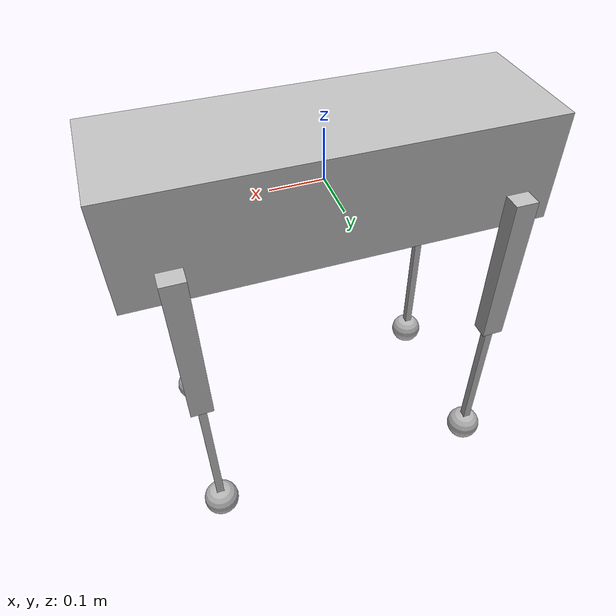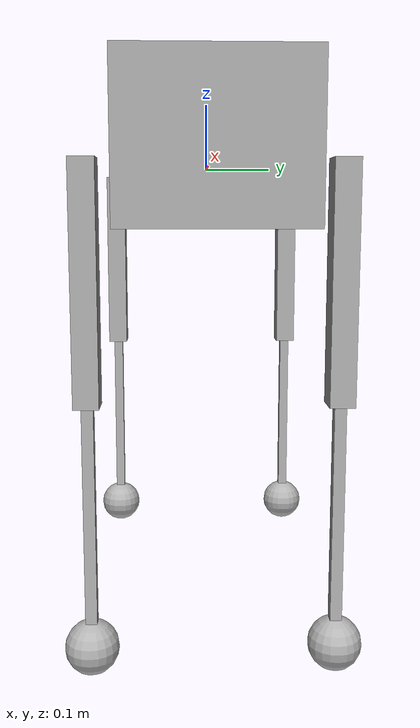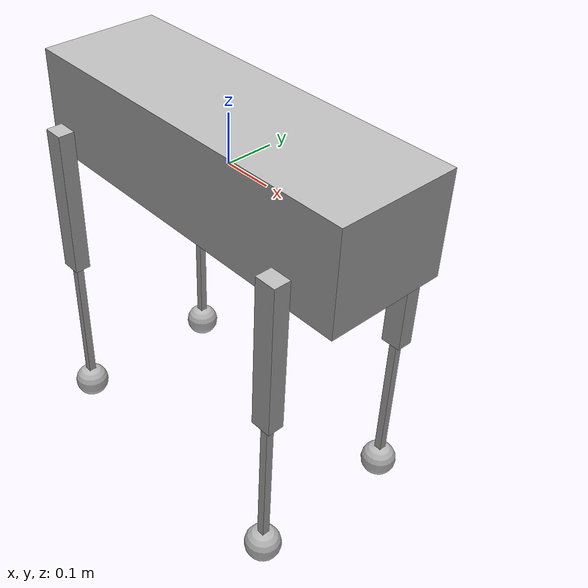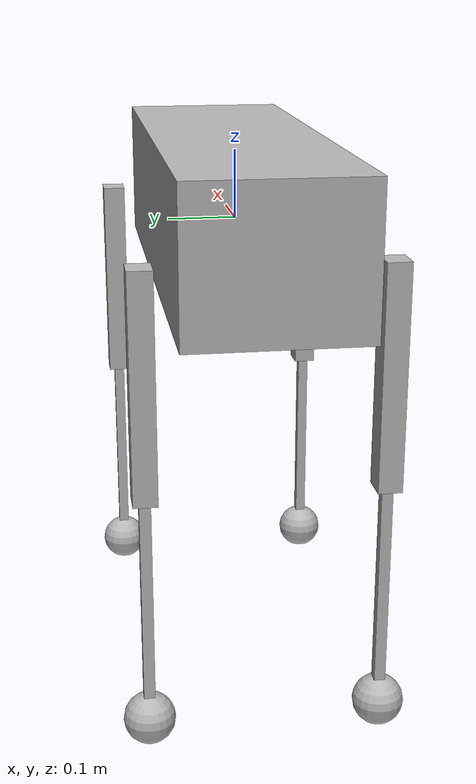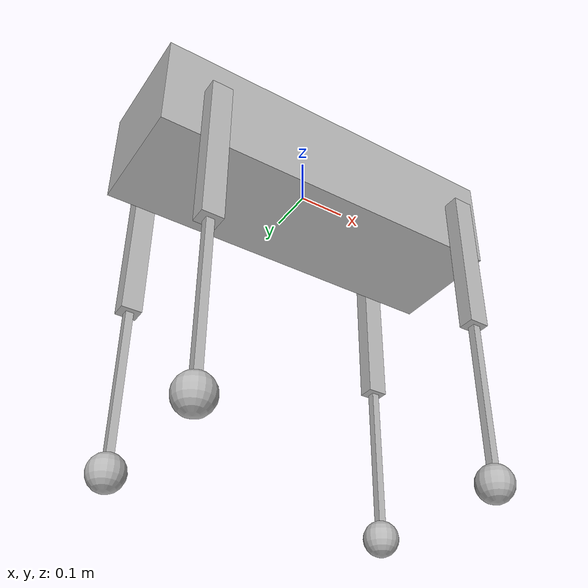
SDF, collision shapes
<sdf version='1.6'>
  <model name='spot'>
    <link name='body'>
      <pose frame=''>0 0 0 0 -0 0</pose>
      <inertial>
        <pose frame=''>0.002284 -4.1e-05 0.025163 0 -0 0</pose>
        <mass>13.734</mass>
        <inertia>
          <ixx>0.0734495</ixx>
          <ixy>0.00030338</ixy>
          <ixz>0.00191816</ixz>
          <iyy>0.250785</iyy>
          <iyz>-7.5401e-05</iyz>
          <izz>0.254569</izz>
        </inertia>
      </inertial>
      <collision name='body_fixed_joint_lump__trunk_collision'>
        <pose frame=''>0 0 0.01675 0 -0 0</pose>
        <geometry>
          <box>
            <size>0.78 0.25 0.21</size>
          </box>
        </geometry>
        <surface>
          <contact>
            <ode>
              <kp>1e+06</kp>
              <kd>1</kd>
            </ode>
          </contact>
          <friction>
            <ode>
              <mu>0.85</mu>
              <mu2>0.85</mu2>
            </ode>
          </friction>
        </surface>
      </collision>
      <collision name='body_fixed_joint_lump__imu_link_collision_1'>
        <pose frame=''>0 0 0 0 -0 0</pose>
        <geometry>
          <box>
            <size>0.001 0.001 0.001</size>
          </box>
        </geometry>
        <surface>
          <contact>
            <ode/>
          </contact>
          <friction>
            <ode/>
          </friction>
        </surface>
      </collision>
      <visual name='body_visual'>
        <pose frame=''>0 0 0 0 -0 0</pose>
        <geometry>
          <box>
            <size>0.001 0.001 0.001</size>
          </box>
        </geometry>
        <material>
          <script>
            <uri>__default__</uri>
            <name>__default__</name>
          </script>
        </material>
      </visual>
      <visual name='body_fixed_joint_lump__trunk_visual_1'>
        <pose frame=''>0 0 0 0 -0 0</pose>
        <geometry>
          <mesh>
            <scale>1 1 1</scale>
            <uri>model:///meshes/body.dae</uri>
          </mesh>
        </geometry>
        <material>
          <script>
            <uri>__default__</uri>
            <name>__default__</name>
          </script>
        </material>
      </visual>
      <visual name='body_fixed_joint_lump__imu_link_visual_2'>
        <pose frame=''>0 0 0 0 -0 0</pose>
        <geometry>
          <box>
            <size>0.001 0.001 0.001</size>
          </box>
        </geometry>
        <material>
          <script>
            <uri>__default__</uri>
            <name>__default__</name>
          </script>
        </material>
      </visual>
      <velocity_decay/>
      <velocity_decay/>
      <velocity_decay/>
      <sensor name='realsense_R200' type='depth'>
        <update_rate>5</update_rate>
        <always_on>1</always_on>
        <visualize>0</visualize>
        <camera name='__default__'>
          <horizontal_fov>1</horizontal_fov>
          <image>
            <width>640</width>
            <height>480</height>
            <format>R8G8B8</format>
          </image>
          <depth_camera>
            <output>depths</output>
          </depth_camera>
          <clip>
            <near>0.005</near>
            <far>6</far>
          </clip>
        </camera>
        <plugin name='camera_controller' filename='libgazebo_ros_openni_kinect.so'>
          <baseline>0.2</baseline>
          <alwaysOn>1</alwaysOn>
          <updateRate>0.0</updateRate>
          <cameraName>camera</cameraName>
          <frameName>camera_optical</frameName>
          <imageTopicName>rgb/image_raw</imageTopicName>
          <depthImageTopicName>depth/image_raw</depthImageTopicName>
          <pointCloudTopicName>depth/points</pointCloudTopicName>
          <cameraInfoTopicName>rgb/camera_info</cameraInfoTopicName>
          <depthImageCameraInfoTopicName>depth/camera_info</depthImageCameraInfoTopicName>
          <pointCloudCutoff>0.4</pointCloudCutoff>
          <hackBaseline>0.07</hackBaseline>
          <distortionK1>0.0</distortionK1>
          <distortionK2>0.0</distortionK2>
          <distortionK3>0.0</distortionK3>
          <distortionT1>0.0</distortionT1>
          <distortionT2>0.0</distortionT2>
          <CxPrime>0.0</CxPrime>
          <Cx>0.0</Cx>
          <Cy>0.0</Cy>
          <focalLength>0</focalLength>
          <hackBaseline>0</hackBaseline>
        </plugin>
        <pose frame=''>0.42 0 0 0 -0 0</pose>
      </sensor>
      <gravity>1</gravity>
      <velocity_decay/>
      <gravity>1</gravity>
      <sensor name='imu_sensor' type='imu'>
        <always_on>1</always_on>
        <update_rate>500</update_rate>
        <visualize>1</visualize>
        <topic>__default_topic__</topic>
        <plugin name='imu_plugin' filename='libgazebo_ros_imu_sensor.so'>
          <topicName>trunk_imu</topicName>
          <bodyName>imu_link</bodyName>
          <updateRateHZ>500.0</updateRateHZ>
          <gaussianNoise>0.0</gaussianNoise>
          <xyzOffset>0 0 0</xyzOffset>
          <rpyOffset>0 0 0</rpyOffset>
          <frameName>imu_link</frameName>
        </plugin>
        <pose frame=''>0 0 0 0 -0 0</pose>
      </sensor>
    </link>
    <link name='hip2'>
      <pose frame=''>0.29785 -0.055 0 0 -0 0</pose>
      <inertial>
        <pose frame=''>-0.001568 0.008134 0.000864 0 -0 0</pose>
        <mass>1.096</mass>
        <inertia>
          <ixx>0.000822113</ixx>
          <ixy>4.982e-06</ixy>
          <ixz>-3.672e-05</ixz>
          <iyy>0.000983196</iyy>
          <iyz>-2.811e-06</iyz>
          <izz>0.000864753</izz>
        </inertia>
      </inertial>
      <collision name='hip2_collision'>
        <pose frame=''>0 0.021 0 1.5708 -0 0</pose>
        <geometry>
          <cylinder>
            <length>0.08</length>
            <radius>0.041</radius>
          </cylinder>
        </geometry>
        <surface>
          <contact>
            <ode/>
          </contact>
          <friction>
            <ode>
              <mu>0.85</mu>
              <mu2>0.85</mu2>
            </ode>
          </friction>
        </surface>
      </collision>
      <visual name='hip2_visual'>
        <pose frame=''>0 0 0 0 -0 0</pose>
        <geometry>
          <mesh>
            <scale>1 1 1</scale>
            <uri>model:///meshes/front_right_hip.dae</uri>
          </mesh>
        </geometry>
        <material>
          <script>
            <uri>__default__</uri>
            <name>__default__</name>
          </script>
        </material>
      </visual>
      <gravity>1</gravity>
      <velocity_decay/>
    </link>
    <joint name='10' type='revolute'>
      <child>hip2</child>
      <parent>body</parent>
      <axis>
        <xyz>1 0 0</xyz>
        <limit>
          <lower>-3.14</lower>
          <upper>3.14</upper>
          <effort>20</effort>
          <velocity>52.4</velocity>
        </limit>
        <dynamics>
          <damping>0</damping>
          <friction>0</friction>
          <spring_reference>0</spring_reference>
          <spring_stiffness>0</spring_stiffness>
        </dynamics>
        <use_parent_model_frame>0</use_parent_model_frame>
      </axis>
    </joint>
    <link name='upper2'>
      <pose frame=''>0.29785 -0.16595 0 0 -0 0</pose>
      <inertial>
        <pose frame=''>-0.000482 -0.02001 -0.031996 0 -0 0</pose>
        <mass>0.228</mass>
        <inertia>
          <ixx>0.0099611</ixx>
          <ixy>-1.0388e-05</ixy>
          <ixz>0.000250428</ixz>
          <iyy>0.00928008</iyy>
          <iyz>8.511e-05</iyz>
          <izz>0.00178256</izz>
        </inertia>
      </inertial>
      <collision name='upper2_collision'>
        <pose frame=''>0 0 -0.16 3.14159 1.57079 3.14159</pose>
        <geometry>
          <box>
            <size>0.32 0.034 0.043</size>
          </box>
        </geometry>
        <surface>
          <contact>
            <ode>
              <kp>1e+06</kp>
              <kd>1</kd>
            </ode>
          </contact>
          <friction>
            <ode>
              <mu>0.85</mu>
              <mu2>0.85</mu2>
            </ode>
          </friction>
        </surface>
      </collision>
      <visual name='upper2_visual'>
        <pose frame=''>0 0 0 0 0.075 0</pose>
        <geometry>
          <mesh>
            <scale>1 1 1</scale>
            <uri>model:///meshes/front_right_upper_leg.dae</uri>
          </mesh>
        </geometry>
        <material>
          <script>
            <uri>__default__</uri>
            <name>__default__</name>
          </script>
        </material>
      </visual>
      <gravity>1</gravity>
      <velocity_decay/>
      <self_collide>0</self_collide>
    </link>
    <joint name='4' type='revolute'>
      <child>upper2</child>
      <parent>hip2</parent>
      <axis>
        <xyz>0 -1 0</xyz>
        <limit>
          <lower>-3.14</lower>
          <upper>3.14</upper>
          <effort>55</effort>
          <velocity>28.6</velocity>
        </limit>
        <dynamics>
          <damping>0</damping>
          <friction>0</friction>
          <spring_reference>0</spring_reference>
          <spring_stiffness>0</spring_stiffness>
        </dynamics>
        <use_parent_model_frame>0</use_parent_model_frame>
      </axis>
    </joint>
    <link name='lower2'>
      <pose frame=''>0.29785 -0.16595 -0.32147 0 -0 0</pose>
      <inertial>
        <pose frame=''>-0.002196 -0.000381 -0.12338 0 -0 0</pose>
        <mass>0.041</mass>
        <inertia>
          <ixx>0.00618196</ixx>
          <ixy>2.37e-07</ixy>
          <ixz>-2.985e-06</ixz>
          <iyy>0.00619655</iyy>
          <iyz>5.138e-06</iyz>
          <izz>3.4774e-05</izz>
        </inertia>
      </inertial>
      <collision name='lower2_collision'>
        <pose frame=''>0 0 -0.165 3.14159 1.57079 3.14159</pose>
        <geometry>
          <box>
            <size>0.33 0.016 0.016</size>
          </box>
        </geometry>
        <surface>
          <contact>
            <ode/>
          </contact>
          <friction>
            <ode>
              <mu>0.85</mu>
              <mu2>0.85</mu2>
            </ode>
          </friction>
        </surface>
      </collision>
      <visual name='lower2_visual'>
        <pose frame=''>0 0 0 0 -0 0</pose>
        <geometry>
          <mesh>
            <scale>1 1 1</scale>
            <uri>model:///meshes/front_right_lower_leg.dae</uri>
          </mesh>
        </geometry>
        <material>
          <script>
            <uri>__default__</uri>
            <name>__default__</name>
          </script>
        </material>
      </visual>
      <gravity>1</gravity>
      <velocity_decay/>
      <self_collide>0</self_collide>
    </link>
    <joint name='5' type='revolute'>
      <child>lower2</child>
      <parent>upper2</parent>
      <axis>
        <xyz>0 1 0</xyz>
        <limit>
          <lower>-3.14</lower>
          <upper>3.14</upper>
          <effort>55</effort>
          <velocity>28.6</velocity>
        </limit>
        <dynamics>
          <damping>0</damping>
          <friction>0</friction>
          <spring_reference>0</spring_reference>
          <spring_stiffness>0</spring_stiffness>
        </dynamics>
        <use_parent_model_frame>0</use_parent_model_frame>
      </axis>
    </joint>
    <link name='toe2'>
      <pose frame=''>0.29785 -0.16595 -0.65447 0 -0 0</pose>
      <inertial>
        <pose frame=''>0 0 0 0 -0 0</pose>
        <mass>0.01</mass>
        <inertia>
          <ixx>1.6854e-05</ixx>
          <ixy>0</ixy>
          <ixz>0</ixz>
          <iyy>1.6854e-05</iyy>
          <iyz>0</iyz>
          <izz>1.6854e-05</izz>
        </inertia>
      </inertial>
      <collision name='toe2_collision_collision'>
        <pose frame=''>0 0 0 0 -0 0</pose>
        <geometry>
          <sphere>
            <radius>0.037</radius>
          </sphere>
        </geometry>
        <surface>
          <contact>
            <ode>
              <kp>1e+06</kp>
              <kd>1</kd>
            </ode>
          </contact>
          <friction>
            <ode>
              <mu>0.85</mu>
              <mu2>0.85</mu2>
            </ode>
          </friction>
        </surface>
      </collision>
      <velocity_decay/>
      <sensor name='toe2_contact' type='contact'>
        <plugin name='toe2_plugin' filename='libgazebo_ros_bumper.so'>
          <alwaysOn>1</alwaysOn>
          <updateRate>500</updateRate>
          <bumperTopicName>gazebo/toe2_contact_state</bumperTopicName>
          <frameName>world</frameName>
        </plugin>
        <contact>
          <collision>toe2_collision</collision>
          <topic>__default_topic__</topic>
        </contact>
        <update_rate>500</update_rate>
      </sensor>
      <gravity>1</gravity>
      <velocity_decay/>
      <self_collide>0</self_collide>
    </link>
    <joint name='jtoe2' type='fixed'>
      <child>toe2</child>
      <parent>lower2</parent>
      <axis>
        <dynamics>
          <spring_reference>0</spring_reference>
          <spring_stiffness>0</spring_stiffness>
        </dynamics>
        <xyz>0 0 1</xyz>
        <use_parent_model_frame>0</use_parent_model_frame>
        <limit>
          <lower>-1e+16</lower>
          <upper>1e+16</upper>
        </limit>
      </axis>
      <physics>
        <ode>
          <limit>
            <cfm>0</cfm>
            <erp>0.2</erp>
          </limit>
        </ode>
      </physics>
    </joint>
    <link name='hip3'>
      <pose frame=''>-0.29785 -0.055 0 0 -0 0</pose>
      <inertial>
        <pose frame=''>0.001568 0.008134 0.000864 0 -0 0</pose>
        <mass>1.096</mass>
        <inertia>
          <ixx>0.000822113</ixx>
          <ixy>-4.982e-06</ixy>
          <ixz>3.672e-05</ixz>
          <iyy>0.000983196</iyy>
          <iyz>-2.811e-06</iyz>
          <izz>0.000864753</izz>
        </inertia>
      </inertial>
      <collision name='hip3_collision'>
        <pose frame=''>0 0.021 0 1.5708 -0 0</pose>
        <geometry>
          <cylinder>
            <length>0.08</length>
            <radius>0.041</radius>
          </cylinder>
        </geometry>
        <surface>
          <contact>
            <ode/>
          </contact>
          <friction>
            <ode>
              <mu>0.85</mu>
              <mu2>0.85</mu2>
            </ode>
          </friction>
        </surface>
      </collision>
      <visual name='hip3_visual'>
        <pose frame=''>0 0 0 0 -0 0</pose>
        <geometry>
          <mesh>
            <scale>1 1 1</scale>
            <uri>model:///meshes/rear_right_hip.dae</uri>
          </mesh>
        </geometry>
        <material>
          <script>
            <uri>__default__</uri>
            <name>__default__</name>
          </script>
        </material>
      </visual>
      <gravity>1</gravity>
      <velocity_decay/>
    </link>
    <joint name='11' type='revolute'>
      <child>hip3</child>
      <parent>body</parent>
      <axis>
        <xyz>1 0 0</xyz>
        <limit>
          <lower>-3.14</lower>
          <upper>3.14</upper>
          <effort>20</effort>
          <velocity>52.4</velocity>
        </limit>
        <dynamics>
          <damping>0</damping>
          <friction>0</friction>
          <spring_reference>0</spring_reference>
          <spring_stiffness>0</spring_stiffness>
        </dynamics>
        <use_parent_model_frame>0</use_parent_model_frame>
      </axis>
    </joint>
    <link name='upper3'>
      <pose frame=''>-0.29785 -0.16595 0 0 -0 0</pose>
      <inertial>
        <pose frame=''>-0.000482 -0.02001 -0.031996 0 -0 0</pose>
        <mass>0.228</mass>
        <inertia>
          <ixx>0.00991611</ixx>
          <ixy>-1.0388e-05</ixy>
          <ixz>0.000250428</ixz>
          <iyy>0.00928008</iyy>
          <iyz>8.511e-05</iyz>
          <izz>0.00178256</izz>
        </inertia>
      </inertial>
      <collision name='upper3_collision'>
        <pose frame=''>0 0 -0.16 3.14159 1.57079 3.14159</pose>
        <geometry>
          <box>
            <size>0.32 0.034 0.043</size>
          </box>
        </geometry>
        <surface>
          <contact>
            <ode>
              <kp>1e+06</kp>
              <kd>1</kd>
            </ode>
          </contact>
          <friction>
            <ode>
              <mu>0.85</mu>
              <mu2>0.85</mu2>
            </ode>
          </friction>
        </surface>
      </collision>
      <visual name='upper3_visual'>
        <pose frame=''>0 0 0 0 0.075 0</pose>
        <geometry>
          <mesh>
            <scale>1 1 1</scale>
            <uri>model:///meshes/rear_right_upper_leg.dae</uri>
          </mesh>
        </geometry>
        <material>
          <script>
            <uri>__default__</uri>
            <name>__default__</name>
          </script>
        </material>
      </visual>
      <gravity>1</gravity>
      <velocity_decay/>
      <self_collide>0</self_collide>
    </link>
    <joint name='6' type='revolute'>
      <child>upper3</child>
      <parent>hip3</parent>
      <axis>
        <xyz>0 -1 0</xyz>
        <limit>
          <lower>-3.14</lower>
          <upper>3.14</upper>
          <effort>55</effort>
          <velocity>28.6</velocity>
        </limit>
        <dynamics>
          <damping>0</damping>
          <friction>0</friction>
          <spring_reference>0</spring_reference>
          <spring_stiffness>0</spring_stiffness>
        </dynamics>
        <use_parent_model_frame>0</use_parent_model_frame>
      </axis>
    </joint>
    <link name='lower3'>
      <pose frame=''>-0.29785 -0.16595 -0.32147 0 -0 0</pose>
      <inertial>
        <pose frame=''>-0.002196 -0.000381 -0.12338 0 -0 0</pose>
        <mass>0.041</mass>
        <inertia>
          <ixx>0.00618196</ixx>
          <ixy>2.37e-07</ixy>
          <ixz>-2.985e-06</ixz>
          <iyy>0.00619655</iyy>
          <iyz>5.138e-06</iyz>
          <izz>3.4774e-05</izz>
        </inertia>
      </inertial>
      <collision name='lower3_collision'>
        <pose frame=''>0 0 -0.165 3.14159 1.57079 3.14159</pose>
        <geometry>
          <box>
            <size>0.33 0.016 0.016</size>
          </box>
        </geometry>
        <surface>
          <contact>
            <ode/>
          </contact>
          <friction>
            <ode>
              <mu>0.85</mu>
              <mu2>0.85</mu2>
            </ode>
          </friction>
        </surface>
      </collision>
      <visual name='lower3_visual'>
        <pose frame=''>0 0 0 0 -0 0</pose>
        <geometry>
          <mesh>
            <scale>1 1 1</scale>
            <uri>model:///meshes/rear_right_lower_leg.dae</uri>
          </mesh>
        </geometry>
        <material>
          <script>
            <uri>__default__</uri>
            <name>__default__</name>
          </script>
        </material>
      </visual>
      <gravity>1</gravity>
      <velocity_decay/>
      <self_collide>0</self_collide>
    </link>
    <joint name='7' type='revolute'>
      <child>lower3</child>
      <parent>upper3</parent>
      <axis>
        <xyz>0 1 0</xyz>
        <limit>
          <lower>-3.14</lower>
          <upper>3.14</upper>
          <effort>55</effort>
          <velocity>28.6</velocity>
        </limit>
        <dynamics>
          <damping>0</damping>
          <friction>0</friction>
          <spring_reference>0</spring_reference>
          <spring_stiffness>0</spring_stiffness>
        </dynamics>
        <use_parent_model_frame>0</use_parent_model_frame>
      </axis>
    </joint>
    <link name='toe3'>
      <pose frame=''>-0.29785 -0.16595 -0.65447 0 -0 0</pose>
      <inertial>
        <pose frame=''>0 0 0 0 -0 0</pose>
        <mass>0.01</mass>
        <inertia>
          <ixx>1.6854e-05</ixx>
          <ixy>0</ixy>
          <ixz>0</ixz>
          <iyy>1.6854e-05</iyy>
          <iyz>0</iyz>
          <izz>1.6854e-05</izz>
        </inertia>
      </inertial>
      <collision name='toe3_collision_collision'>
        <pose frame=''>0 0 0 0 -0 0</pose>
        <geometry>
          <sphere>
            <radius>0.037</radius>
          </sphere>
        </geometry>
        <surface>
          <contact>
            <ode>
              <kp>1e+06</kp>
              <kd>1</kd>
            </ode>
          </contact>
          <friction>
            <ode>
              <mu>0.85</mu>
              <mu2>0.85</mu2>
            </ode>
          </friction>
        </surface>
      </collision>
      <velocity_decay/>
      <sensor name='toe3_contact' type='contact'>
        <plugin name='toe3_plugin' filename='libgazebo_ros_bumper.so'>
          <alwaysOn>1</alwaysOn>
          <updateRate>500</updateRate>
          <bumperTopicName>gazebo/toe3_contact_state</bumperTopicName>
          <frameName>world</frameName>
        </plugin>
        <contact>
          <collision>toe3_collision</collision>
          <topic>__default_topic__</topic>
        </contact>
        <update_rate>500</update_rate>
      </sensor>
      <gravity>1</gravity>
      <velocity_decay/>
      <self_collide>0</self_collide>
    </link>
    <joint name='jtoe3' type='fixed'>
      <child>toe3</child>
      <parent>lower3</parent>
      <axis>
        <dynamics>
          <spring_reference>0</spring_reference>
          <spring_stiffness>0</spring_stiffness>
        </dynamics>
        <xyz>0 0 1</xyz>
        <use_parent_model_frame>0</use_parent_model_frame>
        <limit>
          <lower>-1e+16</lower>
          <upper>1e+16</upper>
        </limit>
      </axis>
      <physics>
        <ode>
          <limit>
            <cfm>0</cfm>
            <erp>0.2</erp>
          </limit>
        </ode>
      </physics>
    </joint>
    <link name='hip0'>
      <pose frame=''>0.29785 0.055 0 0 -0 0</pose>
      <inertial>
        <pose frame=''>-0.001568 -0.008134 0.000864 0 -0 0</pose>
        <mass>1.096</mass>
        <inertia>
          <ixx>0.000822113</ixx>
          <ixy>-4.982e-06</ixy>
          <ixz>-3.672e-05</ixz>
          <iyy>0.000983196</iyy>
          <iyz>2.811e-06</iyz>
          <izz>0.000864753</izz>
        </inertia>
      </inertial>
      <collision name='hip0_collision'>
        <pose frame=''>0 -0.021 0 1.5708 -0 0</pose>
        <geometry>
          <cylinder>
            <length>0.08</length>
            <radius>0.041</radius>
          </cylinder>
        </geometry>
        <surface>
          <contact>
            <ode/>
          </contact>
          <friction>
            <ode>
              <mu>0.85</mu>
              <mu2>0.85</mu2>
            </ode>
          </friction>
        </surface>
      </collision>
      <visual name='hip0_visual'>
        <pose frame=''>0 0 0 0 -0 0</pose>
        <geometry>
          <mesh>
            <scale>1 1 1</scale>
            <uri>model:///meshes/front_left_hip.dae</uri>
          </mesh>
        </geometry>
        <material>
          <script>
            <uri>__default__</uri>
            <name>__default__</name>
          </script>
        </material>
      </visual>
      <gravity>1</gravity>
      <velocity_decay/>
    </link>
    <joint name='8' type='revolute'>
      <child>hip0</child>
      <parent>body</parent>
      <axis>
        <xyz>1 0 0</xyz>
        <limit>
          <lower>-3.14</lower>
          <upper>3.14</upper>
          <effort>20</effort>
          <velocity>52.4</velocity>
        </limit>
        <dynamics>
          <damping>0</damping>
          <friction>0</friction>
          <spring_reference>0</spring_reference>
          <spring_stiffness>0</spring_stiffness>
        </dynamics>
        <use_parent_model_frame>0</use_parent_model_frame>
      </axis>
    </joint>
    <link name='upper0'>
      <pose frame=''>0.29785 0.16595 0 0 -0 0</pose>
      <inertial>
        <pose frame=''>-0.000482 0.02001 -0.031996 0 -0 0</pose>
        <mass>0.228</mass>
        <inertia>
          <ixx>0.00991611</ixx>
          <ixy>1.0388e-05</ixy>
          <ixz>0.000250428</ixz>
          <iyy>0.00928008</iyy>
          <iyz>-8.511e-05</iyz>
          <izz>0.00178256</izz>
        </inertia>
      </inertial>
      <collision name='upper0_collision'>
        <pose frame=''>0 0 -0.16 3.14159 -1.57079 3.14159</pose>
        <geometry>
          <box>
            <size>0.32 0.034 0.043</size>
          </box>
        </geometry>
        <surface>
          <contact>
            <ode>
              <kp>1e+06</kp>
              <kd>1</kd>
            </ode>
          </contact>
          <friction>
            <ode>
              <mu>0.85</mu>
              <mu2>0.85</mu2>
            </ode>
          </friction>
        </surface>
      </collision>
      <visual name='upper0_visual'>
        <pose frame=''>0 0 0 0 0.075 0</pose>
        <geometry>
          <mesh>
            <scale>1 1 1</scale>
            <uri>model:///meshes/front_left_upper_leg.dae</uri>
          </mesh>
        </geometry>
        <material>
          <script>
            <uri>__default__</uri>
            <name>__default__</name>
          </script>
        </material>
      </visual>
      <gravity>1</gravity>
      <velocity_decay/>
      <self_collide>0</self_collide>
    </link>
    <joint name='0' type='revolute'>
      <child>upper0</child>
      <parent>hip0</parent>
      <axis>
        <xyz>0 -1 0</xyz>
        <limit>
          <lower>-3.14</lower>
          <upper>3.14</upper>
          <effort>55</effort>
          <velocity>28.6</velocity>
        </limit>
        <dynamics>
          <damping>0</damping>
          <friction>0</friction>
          <spring_reference>0</spring_reference>
          <spring_stiffness>0</spring_stiffness>
        </dynamics>
        <use_parent_model_frame>0</use_parent_model_frame>
      </axis>
    </joint>
    <link name='lower0'>
      <pose frame=''>0.29785 0.16595 -0.32147 0 -0 0</pose>
      <inertial>
        <pose frame=''>-0.002196 -0.000381 -0.12338 0 -0 0</pose>
        <mass>0.041</mass>
        <inertia>
          <ixx>0.00618196</ixx>
          <ixy>2.37e-07</ixy>
          <ixz>-2.985e-06</ixz>
          <iyy>0.00619655</iyy>
          <iyz>5.138e-06</iyz>
          <izz>3.4774e-05</izz>
        </inertia>
      </inertial>
      <collision name='lower0_collision'>
        <pose frame=''>0 0 -0.165 3.14159 1.57079 3.14159</pose>
        <geometry>
          <box>
            <size>0.33 0.016 0.016</size>
          </box>
        </geometry>
        <surface>
          <contact>
            <ode/>
          </contact>
          <friction>
            <ode>
              <mu>0.85</mu>
              <mu2>0.85</mu2>
            </ode>
          </friction>
        </surface>
      </collision>
      <visual name='lower0_visual'>
        <pose frame=''>0 0 0 0 -0 0</pose>
        <geometry>
          <mesh>
            <scale>1 1 1</scale>
            <uri>model:///meshes/front_left_lower_leg.dae</uri>
          </mesh>
        </geometry>
        <material>
          <script>
            <uri>__default__</uri>
            <name>__default__</name>
          </script>
        </material>
      </visual>
      <gravity>1</gravity>
      <velocity_decay/>
      <self_collide>0</self_collide>
    </link>
    <joint name='1' type='revolute'>
      <child>lower0</child>
      <parent>upper0</parent>
      <axis>
        <xyz>0 1 0</xyz>
        <limit>
          <lower>-3.14</lower>
          <upper>3.14</upper>
          <effort>55</effort>
          <velocity>28.6</velocity>
        </limit>
        <dynamics>
          <damping>0</damping>
          <friction>0</friction>
          <spring_reference>0</spring_reference>
          <spring_stiffness>0</spring_stiffness>
        </dynamics>
        <use_parent_model_frame>0</use_parent_model_frame>
      </axis>
    </joint>
    <link name='toe0'>
      <pose frame=''>0.29785 0.16595 -0.65447 0 -0 0</pose>
      <inertial>
        <pose frame=''>0 0 0 0 -0 0</pose>
        <mass>0.01</mass>
        <inertia>
          <ixx>1.6854e-05</ixx>
          <ixy>0</ixy>
          <ixz>0</ixz>
          <iyy>1.6854e-05</iyy>
          <iyz>0</iyz>
          <izz>1.6854e-05</izz>
        </inertia>
      </inertial>
      <collision name='toe0_collision_collision'>
        <pose frame=''>0 0 0 0 -0 0</pose>
        <geometry>
          <sphere>
            <radius>0.037</radius>
          </sphere>
        </geometry>
        <surface>
          <contact>
            <ode>
              <kp>1e+06</kp>
              <kd>1</kd>
            </ode>
          </contact>
          <friction>
            <ode>
              <mu>0.85</mu>
              <mu2>0.85</mu2>
            </ode>
          </friction>
        </surface>
      </collision>
      <velocity_decay/>
      <sensor name='toe0_contact' type='contact'>
        <plugin name='toe0_plugin' filename='libgazebo_ros_bumper.so'>
          <alwaysOn>1</alwaysOn>
          <updateRate>500</updateRate>
          <bumperTopicName>gazebo/toe0_contact_state</bumperTopicName>
          <frameName>world</frameName>
        </plugin>
        <contact>
          <collision>toe0_collision</collision>
          <topic>__default_topic__</topic>
        </contact>
        <update_rate>500</update_rate>
      </sensor>
      <gravity>1</gravity>
      <velocity_decay/>
      <self_collide>0</self_collide>
    </link>
    <joint name='jtoe0' type='fixed'>
      <child>toe0</child>
      <parent>lower0</parent>
      <axis>
        <dynamics>
          <spring_reference>0</spring_reference>
          <spring_stiffness>0</spring_stiffness>
        </dynamics>
        <xyz>0 0 1</xyz>
        <use_parent_model_frame>0</use_parent_model_frame>
        <limit>
          <lower>-1e+16</lower>
          <upper>1e+16</upper>
        </limit>
      </axis>
      <physics>
        <ode>
          <limit>
            <cfm>0</cfm>
            <erp>0.2</erp>
          </limit>
        </ode>
      </physics>
    </joint>
    <link name='hip1'>
      <pose frame=''>-0.29785 0.055 0 0 -0 0</pose>
      <inertial>
        <pose frame=''>0.001568 -0.008134 0.000864 0 -0 0</pose>
        <mass>1.096</mass>
        <inertia>
          <ixx>0.000822113</ixx>
          <ixy>4.982e-06</ixy>
          <ixz>3.672e-05</ixz>
          <iyy>0.000983196</iyy>
          <iyz>2.811e-06</iyz>
          <izz>0.000864753</izz>
        </inertia>
      </inertial>
      <collision name='hip1_collision'>
        <pose frame=''>0 -0.021 0 1.5708 -0 0</pose>
        <geometry>
          <cylinder>
            <length>0.08</length>
            <radius>0.041</radius>
          </cylinder>
        </geometry>
        <surface>
          <contact>
            <ode/>
          </contact>
          <friction>
            <ode>
              <mu>0.85</mu>
              <mu2>0.85</mu2>
            </ode>
          </friction>
        </surface>
      </collision>
      <visual name='hip1_visual'>
        <pose frame=''>0 0 0 0 -0 0</pose>
        <geometry>
          <mesh>
            <scale>1 1 1</scale>
            <uri>model:///meshes/rear_left_hip.dae</uri>
          </mesh>
        </geometry>
        <material>
          <script>
            <uri>__default__</uri>
            <name>__default__</name>
          </script>
        </material>
      </visual>
      <gravity>1</gravity>
      <velocity_decay/>
    </link>
    <joint name='9' type='revolute'>
      <child>hip1</child>
      <parent>body</parent>
      <axis>
        <xyz>1 0 0</xyz>
        <limit>
          <lower>-3.14</lower>
          <upper>3.14</upper>
          <effort>20</effort>
          <velocity>52.4</velocity>
        </limit>
        <dynamics>
          <damping>0</damping>
          <friction>0</friction>
          <spring_reference>0</spring_reference>
          <spring_stiffness>0</spring_stiffness>
        </dynamics>
        <use_parent_model_frame>0</use_parent_model_frame>
      </axis>
    </joint>
    <link name='upper1'>
      <pose frame=''>-0.29785 0.16595 0 0 -0 0</pose>
      <inertial>
        <pose frame=''>-0.000482 0.02001 -0.031996 0 -0 0</pose>
        <mass>0.228</mass>
        <inertia>
          <ixx>0.00991611</ixx>
          <ixy>1.0388e-05</ixy>
          <ixz>0.000250428</ixz>
          <iyy>0.00928008</iyy>
          <iyz>-8.511e-05</iyz>
          <izz>0.00178256</izz>
        </inertia>
      </inertial>
      <collision name='upper1_collision'>
        <pose frame=''>0 0 -0.16 3.14159 1.57079 3.14159</pose>
        <geometry>
          <box>
            <size>0.32 0.034 0.043</size>
          </box>
        </geometry>
        <surface>
          <contact>
            <ode>
              <kp>1e+06</kp>
              <kd>1</kd>
            </ode>
          </contact>
          <friction>
            <ode>
              <mu>0.85</mu>
              <mu2>0.85</mu2>
            </ode>
          </friction>
        </surface>
      </collision>
      <visual name='upper1_visual'>
        <pose frame=''>0 0 0 0 0.075 0</pose>
        <geometry>
          <mesh>
            <scale>1 1 1</scale>
            <uri>model:///meshes/rear_left_upper_leg.dae</uri>
          </mesh>
        </geometry>
        <material>
          <script>
            <uri>__default__</uri>
            <name>__default__</name>
          </script>
        </material>
      </visual>
      <gravity>1</gravity>
      <velocity_decay/>
      <self_collide>0</self_collide>
    </link>
    <joint name='2' type='revolute'>
      <child>upper1</child>
      <parent>hip1</parent>
      <axis>
        <xyz>0 -1 0</xyz>
        <limit>
          <lower>-3.14</lower>
          <upper>3.14</upper>
          <effort>55</effort>
          <velocity>28.6</velocity>
        </limit>
        <dynamics>
          <damping>0</damping>
          <friction>0</friction>
          <spring_reference>0</spring_reference>
          <spring_stiffness>0</spring_stiffness>
        </dynamics>
        <use_parent_model_frame>0</use_parent_model_frame>
      </axis>
    </joint>
    <link name='lower1'>
      <pose frame=''>-0.29785 0.16595 -0.32147 0 -0 0</pose>
      <inertial>
        <pose frame=''>-0.002196 -0.000381 -0.12338 0 -0 0</pose>
        <mass>0.041</mass>
        <inertia>
          <ixx>0.00618196</ixx>
          <ixy>2.37e-07</ixy>
          <ixz>-2.985e-06</ixz>
          <iyy>0.00619655</iyy>
          <iyz>5.138e-06</iyz>
          <izz>3.4774e-05</izz>
        </inertia>
      </inertial>
      <collision name='lower1_collision'>
        <pose frame=''>0 0 -0.165 3.14159 1.57079 3.14159</pose>
        <geometry>
          <box>
            <size>0.33 0.016 0.016</size>
          </box>
        </geometry>
        <surface>
          <contact>
            <ode/>
          </contact>
          <friction>
            <ode>
              <mu>0.85</mu>
              <mu2>0.85</mu2>
            </ode>
          </friction>
        </surface>
      </collision>
      <visual name='lower1_visual'>
        <pose frame=''>0 0 0 0 -0 0</pose>
        <geometry>
          <mesh>
            <scale>1 1 1</scale>
            <uri>model:///meshes/rear_left_lower_leg.dae</uri>
          </mesh>
        </geometry>
        <material>
          <script>
            <uri>__default__</uri>
            <name>__default__</name>
          </script>
        </material>
      </visual>
      <gravity>1</gravity>
      <velocity_decay/>
      <self_collide>0</self_collide>
    </link>
    <joint name='3' type='revolute'>
      <child>lower1</child>
      <parent>upper1</parent>
      <axis>
        <xyz>0 1 0</xyz>
        <limit>
          <lower>-3.14</lower>
          <upper>3.14</upper>
          <effort>55</effort>
          <velocity>28.6</velocity>
        </limit>
        <dynamics>
          <damping>0</damping>
          <friction>0</friction>
          <spring_reference>0</spring_reference>
          <spring_stiffness>0</spring_stiffness>
        </dynamics>
        <use_parent_model_frame>0</use_parent_model_frame>
      </axis>
    </joint>
    <link name='toe1'>
      <pose frame=''>-0.29785 0.16595 -0.65447 0 -0 0</pose>
      <inertial>
        <pose frame=''>0 0 0 0 -0 0</pose>
        <mass>0.01</mass>
        <inertia>
          <ixx>1.6854e-05</ixx>
          <ixy>0</ixy>
          <ixz>0</ixz>
          <iyy>1.6854e-05</iyy>
          <iyz>0</iyz>
          <izz>1.6854e-05</izz>
        </inertia>
      </inertial>
      <collision name='toe1_collision_collision'>
        <pose frame=''>0 0 0 0 -0 0</pose>
        <geometry>
          <sphere>
            <radius>0.037</radius>
          </sphere>
        </geometry>
        <surface>
          <contact>
            <ode>
              <kp>1e+06</kp>
              <kd>1</kd>
            </ode>
          </contact>
          <friction>
            <ode>
              <mu>0.85</mu>
              <mu2>0.85</mu2>
            </ode>
          </friction>
        </surface>
      </collision>
      <velocity_decay/>
      <sensor name='toe1_contact' type='contact'>
        <plugin name='toe1_plugin' filename='libgazebo_ros_bumper.so'>
          <alwaysOn>1</alwaysOn>
          <updateRate>500</updateRate>
          <bumperTopicName>gazebo/toe1_contact_state</bumperTopicName>
          <frameName>world</frameName>
        </plugin>
        <contact>
          <collision>toe1_collision</collision>
          <topic>__default_topic__</topic>
        </contact>
        <update_rate>500</update_rate>
      </sensor>
      <gravity>1</gravity>
      <velocity_decay/>
      <self_collide>0</self_collide>
    </link>
    <joint name='jtoe1' type='fixed'>
      <child>toe1</child>
      <parent>lower1</parent>
      <axis>
        <dynamics>
          <spring_reference>0</spring_reference>
          <spring_stiffness>0</spring_stiffness>
        </dynamics>
        <xyz>0 0 1</xyz>
        <use_parent_model_frame>0</use_parent_model_frame>
        <limit>
          <lower>-1e+16</lower>
          <upper>1e+16</upper>
        </limit>
      </axis>
      <physics>
        <ode>
          <limit>
            <cfm>0</cfm>
            <erp>0.2</erp>
          </limit>
        </ode>
      </physics>
    </joint>
    <static>0</static>
    <plugin name='gazebo_ros_control' filename='libgazebo_ros_control.so'>
      <robotSimType>gazebo_ros_control/DefaultRobotHWSim</robotSimType>
    </plugin>
    <plugin name='ground_truth_estimator' filename='libground_truth_estimator.so'>
      <updateRateHZ>500.0</updateRateHZ>
    </plugin>
    <plugin name='gazebo_ros_force' filename='libgazebo_ros_force.so'>
      <topicName>/apply_force/trunk</topicName>
      <bodyName>body</bodyName>
      <xyzOffset>0 0 0</xyzOffset>
      <rpyOffset>0 -0 0</rpyOffset>
    </plugin>
  </model>
</sdf>
